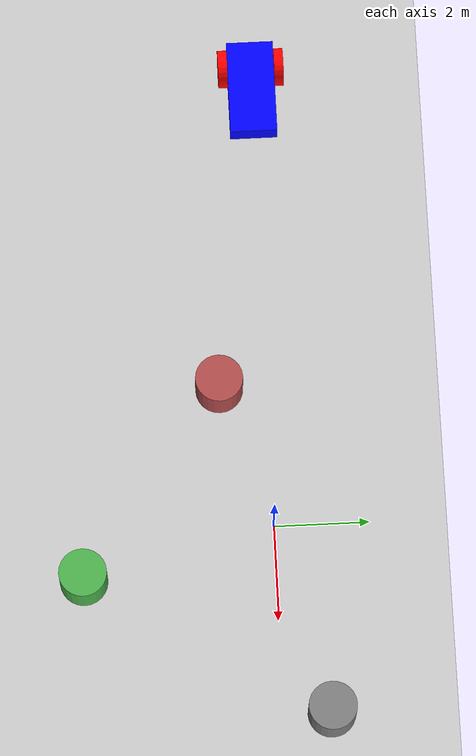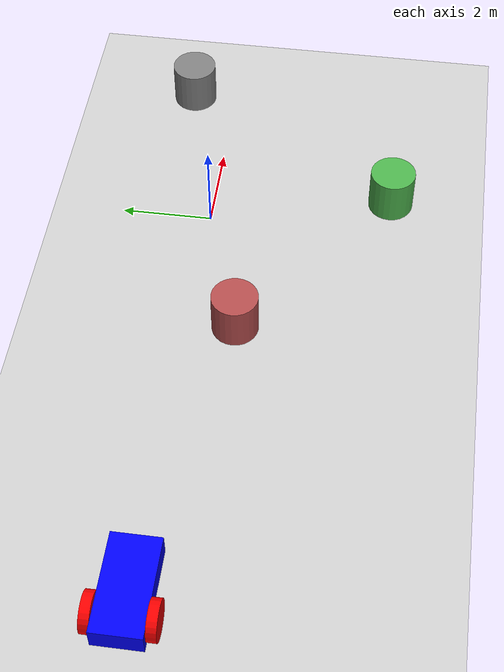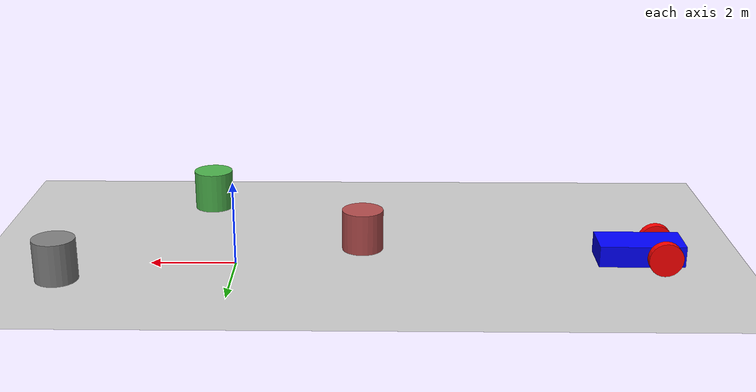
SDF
<?xml version="1.0" ?>
<sdf version="1.8">
    <world name="car_world">
        <!--Select the general parameters of the physics simulation, e.g. step size, type of physics engine, etc.-->
        <physics name="1ms" type="ignored">
            <max_step_size>0.001</max_step_size>
            <real_time_factor>1.0</real_time_factor>
        </physics>

        <plugin
            filename="libignition-gazebo-physics-system.so"
            name="ignition::gazebo::systems::Physics">
        </plugin>
        <plugin
            filename="libignition-gazebo-user-commands-system.so"
            name="ignition::gazebo::systems::UserCommands">
        </plugin>
        <plugin
            filename="libignition-gazebo-scene-broadcaster-system.so"
            name="ignition::gazebo::systems::SceneBroadcaster">
        </plugin>
        <!-- The Lidar sensor is added to the vehicle, it is defined as a plugin that will be used to scan the environment -->
        <plugin
            filename="libignition-gazebo-sensors-system.so"
            name="ignition::gazebo::systems::Sensors">
            <render_engine>ogre2</render_engine>
        </plugin>

        <!--General Parameters of the world-->
        <light type="directional" name="sun">
            <cast_shadows>true</cast_shadows>
            <pose>0 0 10 0 0 0</pose>
            <diffuse>0.8 0.8 0.8 1</diffuse>
            <specular>0.2 0.2 0.2 1</specular>
            <attenuation>
                <range>1000</range>
                <constant>0.9</constant>
                <linear>0.01</linear>
                <quadratic>0.001</quadratic>
            </attenuation>
            <direction>-0.5 0.1 -0.9</direction>
        </light>

        <model name="ground_plane">
            <static>true</static>
            <link name="link">
                <collision name="collision">
                <geometry>
                    <plane>
                    <normal>0 0 1</normal>
                    </plane>
                </geometry>
                </collision>
                <visual name="visual">
                <geometry>
                    <plane>
                    <normal>0 0 1</normal>
                    <size>100 100</size>
                    </plane>
                </geometry>
                <material>
                    <ambient>0.8 0.8 0.8 1</ambient>
                    <diffuse>0.8 0.8 0.8 1</diffuse>
                    <specular>0.8 0.8 0.8 1</specular>
                </material>
                </visual>
            </link>
        </model>

        <!--General parameters of the vehicle, in this case, a differential car with a castor wheel-->
        <!--First the center of the body-->
        <model name='vehicle_blue' canonical_link='chassis'>
            <pose relative_to='world'>-10 0 0 0 0 0</pose>

            <!--The lidar is defined as a frame, it is attached to the chassis, and it has a pose relative to the chassis-->
            <frame name="lidar_frame" attached_to='chassis'>
                <pose>0.8 0 0.5 0 0 0</pose>
            </frame>
            <link name='chassis'>
                <pose relative_to='__model__'>0.5 0 0.4 0 0 0</pose>
                <inertial> <!--inertial properties of the link mass, inertia matix-->
                    <mass>1.14395</mass>
                    <inertia>
                        <ixx>0.095329</ixx>
                        <ixy>0</ixy>
                        <ixz>0</ixz>
                        <iyy>0.381317</iyy>
                        <iyz>0</iyz>
                        <izz>0.476646</izz>
                    </inertia>
                </inertial>
                <visual name='visual'>
                    <geometry>
                        <box>
                            <size>2.0 1.0 0.5</size>
                        </box>
                    </geometry>
                    <!--This changes the color of the vehicle-->
                    <material>
                        <ambient>0.0 0.0 1.0 1</ambient>
                        <diffuse>0.0 0.0 1.0 1</diffuse>
                        <specular>0.0 0.0 1.0 1</specular>
                    </material>
                </visual>
                <!--This is the collision geometry, it is used for physics calculations-->
                <collision name='collision'>
                    <geometry>
                        <box>
                            <size>2.0 1.0 0.5</size>
                        </box>
                    </geometry>
                </collision>

                <!--Create the LiDAR sensor on the chassis of the vehicle-->
                <sensor name='gpu_lidar' type='gpu_lidar'>"
                    <pose relative_to='lidar_frame'>0 0 0 0 0 0</pose>
                    <topic>lidar</topic>
                    <update_rate>10</update_rate>
                    <ray>
                        <scan>
                            <horizontal>
                                <samples>640</samples>
                                <resolution>1</resolution>
                                <min_angle>-1.396263</min_angle>
                                <max_angle>1.396263</max_angle>
                            </horizontal>
                            <vertical>
                                <samples>1</samples>
                                <resolution>0.01</resolution>
                                <min_angle>0</min_angle>
                                <max_angle>0</max_angle>
                            </vertical>
                        </scan>
                        <range>
                            <min>0.08</min>
                            <max>10.0</max>
                            <resolution>0.01</resolution>
                        </range>
                    </ray>
                    <always_on>1</always_on>
                    <visualize>true</visualize>
                </sensor>
            </link>

            <!--The wheels are defined as links, with their own inertial properties, visual and collision geometries-->
            <link name='left_wheel'>
                <pose relative_to="chassis">-0.5 0.6 0 -1.5707 0 0</pose>
                <inertial>
                    <mass>1</mass>
                    <inertia>
                        <ixx>0.043333</ixx>
                        <ixy>0</ixy>
                        <ixz>0</ixz>
                        <iyy>0.043333</iyy>
                        <iyz>0</iyz>
                        <izz>0.08</izz>
                    </inertia>
                </inertial>
                <visual name='visual'>
                    <geometry>
                        <cylinder>
                            <radius>0.4</radius>
                            <length>0.2</length>
                        </cylinder>
                    </geometry>
                    <material>
                        <ambient>1.0 0.0 0.0 1</ambient>
                        <diffuse>1.0 0.0 0.0 1</diffuse>
                        <specular>1.0 0.0 0.0 1</specular>
                    </material>
                </visual>
                <collision name='collision'>
                    <geometry>
                        <cylinder>
                            <radius>0.4</radius>
                            <length>0.2</length>
                        </cylinder>
                    </geometry>
                </collision>
            </link>
            <link name='right_wheel'>
                <pose relative_to="chassis">-0.5 -0.6 0 -1.5707 0 0</pose> <!--angles are in radian-->
                <inertial>
                    <mass>1</mass>
                    <inertia>
                        <ixx>0.043333</ixx>
                        <ixy>0</ixy>
                        <ixz>0</ixz>
                        <iyy>0.043333</iyy>
                        <iyz>0</iyz>
                        <izz>0.08</izz>
                    </inertia>
                </inertial>
                <visual name='visual'>
                    <geometry>
                        <cylinder>
                            <radius>0.4</radius>
                            <length>0.2</length>
                        </cylinder>
                    </geometry>
                    <material>
                        <ambient>1.0 0.0 0.0 1</ambient>
                        <diffuse>1.0 0.0 0.0 1</diffuse>
                        <specular>1.0 0.0 0.0 1</specular>
                    </material>
                </visual>
                <collision name='collision'>
                    <geometry>
                        <cylinder>
                            <radius>0.4</radius>
                            <length>0.2</length>
                        </cylinder>
                    </geometry>
                </collision>
            </link>
            <frame name="caster_frame" attached_to='chassis'>
                <pose>0.8 0 -0.2 0 0 0</pose>
            </frame>
            <link name='caster'>
                <pose relative_to='caster_frame'/>
                <inertial>
                    <mass>1</mass>
                    <inertia>
                        <ixx>0.016</ixx>
                        <ixy>0</ixy>
                        <ixz>0</ixz>
                        <iyy>0.016</iyy>
                        <iyz>0</iyz>
                        <izz>0.016</izz>
                    </inertia>
                </inertial>
                <visual name='visual'>
                    <geometry>
                        <sphere>
                            <radius>0.2</radius>
                        </sphere>
                    </geometry>
                    <material>
                        <ambient>0.0 1 0.0 1</ambient>
                        <diffuse>0.0 1 0.0 1</diffuse>
                        <specular>0.0 1 0.0 1</specular>
                    </material>
                </visual>
                <collision name='collision'>
                    <geometry>
                        <sphere>
                            <radius>0.2</radius>
                        </sphere>
                    </geometry>
                </collision>
            </link>

            <joint name='left_wheel_joint' type='revolute'>
                <pose relative_to='left_wheel'/>
                <parent>chassis</parent>
                <child>left_wheel</child>
                <axis>
                    <xyz expressed_in='__model__'>0 1 0</xyz> <!--can be defined as any frame or even arbitrary frames-->
                    <limit>
                        <lower>-1.79769e+308</lower>    <!--negative infinity-->
                        <upper>1.79769e+308</upper>     <!--positive infinity-->
                    </limit>
                </axis>
            </joint>
            <joint name='right_wheel_joint' type='revolute'>
                <pose relative_to='right_wheel'/>
                <parent>chassis</parent>
                <child>right_wheel</child>
                <axis>
                    <xyz expressed_in='__model__'>0 1 0</xyz>
                    <limit>
                        <lower>-1.79769e+308</lower>    <!--negative infinity-->
                        <upper>1.79769e+308</upper>     <!--positive infinity-->
                    </limit>
                </axis>
            </joint>
            <joint name='caster_wheel' type='ball'>
                <parent>chassis</parent>
                <child>caster</child>
            </joint>

            <!--The plugins are used to control the vehicle, in this case, we use a differential drive plugin that allows to control the vehicle. -->
            <plugin
                filename="libignition-gazebo-diff-drive-system.so"
                name="ignition::gazebo::systems::DiffDrive">
                <left_joint>left_wheel_joint</left_joint>
                <right_joint>right_wheel_joint</right_joint>
                <wheel_separation>1.2</wheel_separation>
                <wheel_radius>0.4</wheel_radius>
                <odom_publish_frequency>10</odom_publish_frequency>
                <topic>cmd_vel</topic>
            </plugin>
        </model>

        <!-- Obstacles are now added, also as models -->
        <model name="circular_obstacle_1">
            <pose>4 1 0.5 0 0 0</pose>
            <static>true</static>
            <link name="link">
                <collision name="collision">
                    <geometry>
                        <cylinder>
                            <radius>0.5</radius>
                            <length>1.0</length>
                        </cylinder>
                    </geometry>
                </collision>
                <visual name="visual">
                    <geometry>
                        <cylinder>
                            <radius>0.5</radius>
                            <length>1.0</length>
                        </cylinder>
                    </geometry>
                    <material>
                        <ambient>0.5 0.5 0.5 1</ambient>
                        <diffuse>0.5 0.5 0.5 1</diffuse>
                    </material>
                </visual>
            </link>
        </model>

        <!-- Circular Obstacle 2 -->
        <model name="circular_obstacle_2">
            <pose>-3 -1 0.5 0 0 0</pose>
            <static>true</static>
            <link name="link">
                <collision name="collision">
                    <geometry>
                        <cylinder>
                            <radius>0.5</radius>
                            <length>1.0</length>
                        </cylinder>
                    </geometry>
                </collision>
                <visual name="visual">
                    <geometry>
                        <cylinder>
                            <radius>0.5</radius>
                            <length>1.0</length>
                        </cylinder>
                    </geometry>
                    <material>
                        <ambient>0.7 0.3 0.3 1</ambient>
                        <diffuse>0.7 0.3 0.3 1</diffuse>
                    </material>
                </visual>
            </link>
        </model>

        <!-- Circular Obstacle 3 -->
        <model name="circular_obstacle_3">
            <pose>1 -4 0.5 0 0 0</pose>
            <static>true</static>
            <link name="link">
                <collision name="collision">
                    <geometry>
                        <cylinder>
                            <radius>0.5</radius>
                            <length>1.0</length>
                        </cylinder>
                    </geometry>
                </collision>
                <visual name="visual">
                    <geometry>
                        <cylinder>
                            <radius>0.5</radius>
                            <length>1.0</length>
                        </cylinder>
                    </geometry>
                    <material>
                        <ambient>0.3 0.7 0.3 1</ambient>
                        <diffuse>0.3 0.7 0.3 1</diffuse>
                    </material>
                </visual>
            </link>
        </model>
    </world>
</sdf>
